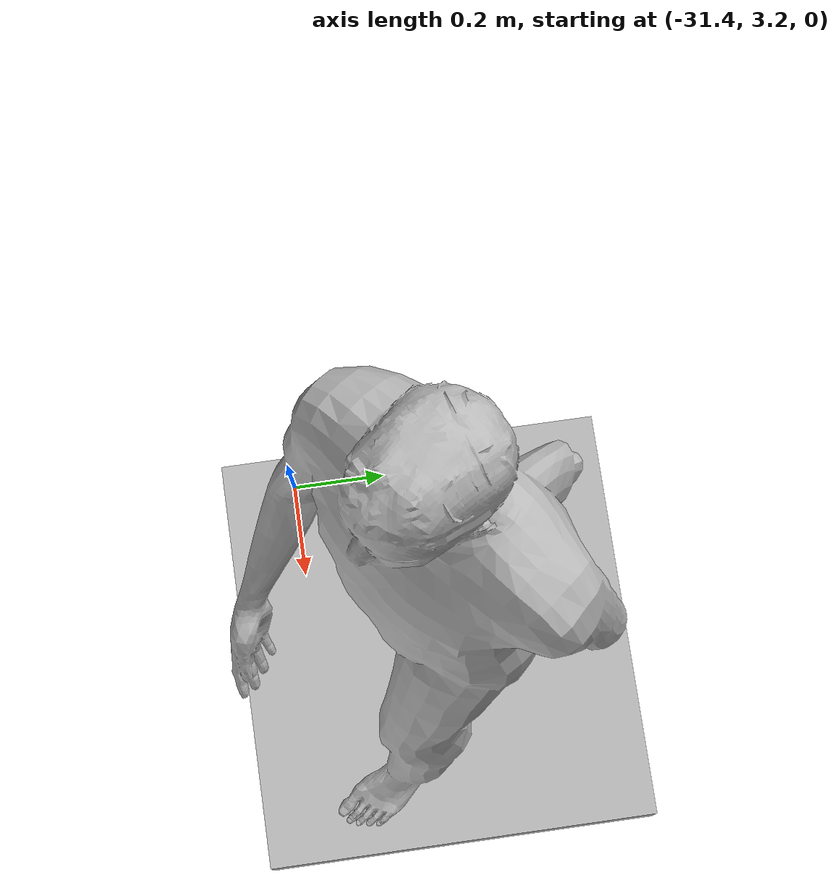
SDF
<sdf version="1.4">
 <world name="karting_sevilla">
  <physics type="ode">
   <ode>
    <solver><type>quick</type><iters>10</iters><sor>1.3</sor></solver>
    <constraints>
     <cfm>0</cfm>
     <erp>0.2</erp>
     <contact_max_correcting_vel>100</contact_max_correcting_vel>
     <contact_surface_layer>0.001</contact_surface_layer>
    </constraints>
   </ode>
   <max_step_size>0.004</max_step_size>
   <real_time_factor>1</real_time_factor>
   <real_time_update_rate>250</real_time_update_rate>
   <gravity>0 0 -9.8</gravity>
   <magnetic_field>6e-06 2.3e-05 -4.2e-05</magnetic_field>
  </physics>
  <include>
   <uri>model://target</uri>
   <pose>-30.962941 3.489969 0.05 0 0 -0.935917</pose>
   <name>target</name>
  </include>
  <include><uri>model://sun</uri></include>
  <include><uri>model://karting</uri></include>
 </world>
</sdf>

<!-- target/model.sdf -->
<sdf version="1.6">
  <model name="target">
    <link name="link">
      <inertial>
        <pose>0 0 0.95 0 0 1.57</pose>
        <mass>80.0</mass>
        <inertia>
          <ixx>27.82</ixx>
          <ixy>0</ixy>
          <ixz>0</ixz>
          <iyy>24.88</iyy>
          <iyz>0</iyz>
          <izz>4.57</izz>
        </inertia>
      </inertial>

      <collision name="bottom">
        <pose>0 0 0.01 0 0 1.57</pose>
        <geometry>
          <box>
            <size>0.35 0.75 0.02</size>
          </box>
        </geometry>
      </collision>

      <collision name="person">
        <pose>0 0 -0.02 0 0 1.57 </pose>
        <geometry>
          <mesh>
            <uri>model://target/meshes/walking.dae</uri>
          </mesh>
        </geometry>
      </collision>

      <visual name="visual">
        <pose>0 0 -0.02 0 0 1.57</pose>
        <geometry>
          <mesh>
            <uri>model://target/meshes/walking.dae</uri>
          </mesh>
        </geometry>
      </visual>
    </link>
       <plugin name="target_plugin" filename="libmultidrone_simulator.so">>
       </plugin>
  </model>
</sdf>

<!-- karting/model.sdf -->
<sdf version="1.5">
  <model name="karting">
    <static>true</static>
    <link name="floor">
      <collision name="collision">
        <geometry>
          <box>
            <size>163.89 163.89 .1</size>
          </box>
        </geometry>
      </collision>
      <visual name="visual">
        <cast_shadows>false</cast_shadows>
        <geometry>
          <box>
            <size>163.89 163.89 .1</size>
          </box>
        </geometry>
        <material>
          <script>
            <uri>model://karting/materials/scripts</uri>
            <uri>model://karting/materials/textures</uri>
            <name>karting</name>
          </script>
        </material>
      </visual>
    </link>
  </model>
</sdf>
